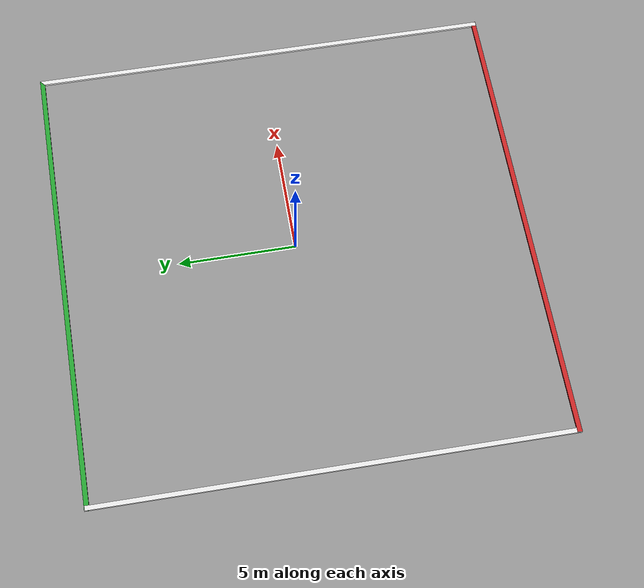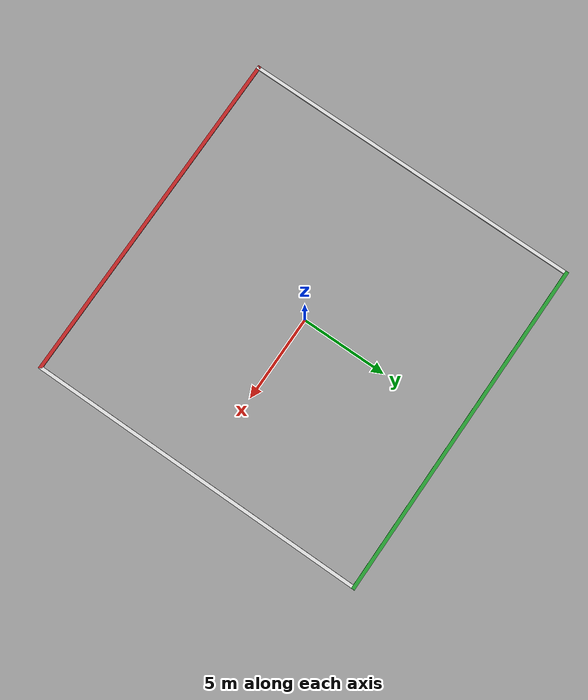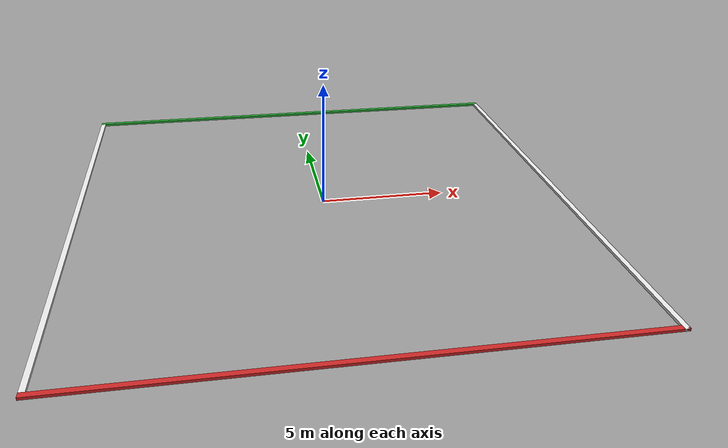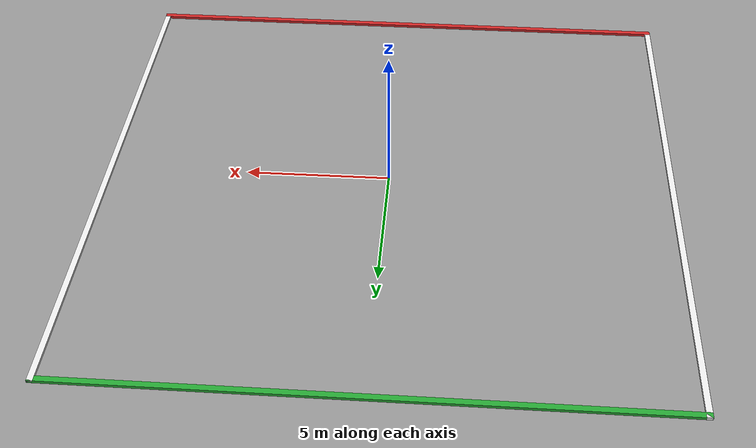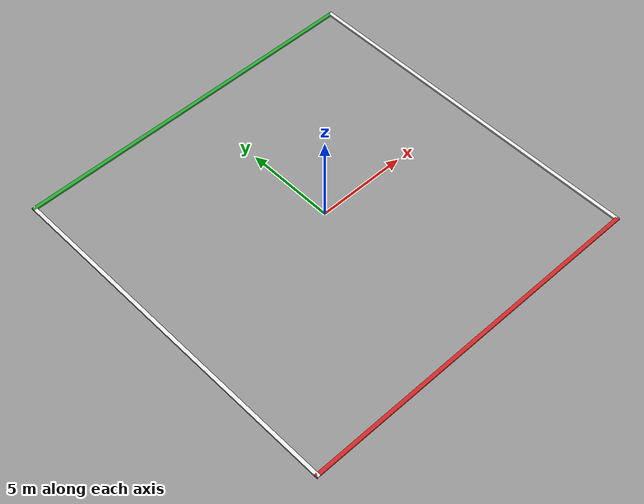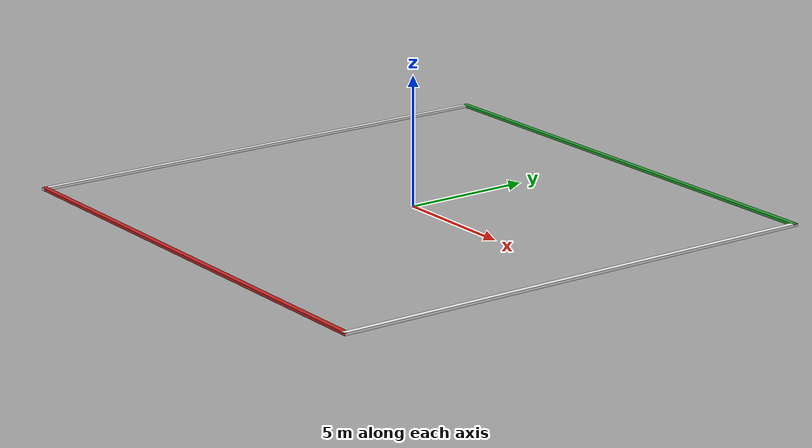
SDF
<sdf version="1.4">
 <world name="default">
  <scene><ambient>0.5 0.5 0.5 1</ambient><background>0.5 0.5 0.5 1</background><shadows>false</shadows></scene>
  <light type="directional" name="directional_light_1">
   <pose>0 20 20 0.1 0.1 0</pose>
   <diffuse>1 1 1 1</diffuse>
   <specular>1 1 1 1</specular>
   <attenuation><range>300</range></attenuation>
   <direction>0.1 0.1 -1</direction>
   <cast_shadows>false</cast_shadows>
  </light>
  <include><pose>0 9.9 0.001 0 0 0</pose><uri>model://green_line</uri></include>
  <include><pose>0 -9.9 0.001 0 0 0</pose><uri>model://red_line</uri></include>
  <include><pose>9.9 0 0.001 0 0 0</pose><uri>model://white_line</uri></include>
  <include><pose>-9.9 0 0.001 0 0 0</pose><uri>model://white_line</uri></include>
 </world>
</sdf>

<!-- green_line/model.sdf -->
<sdf version="1.5">
  <model name="green_line">
    <static>true</static>
    <link name="link">
      <collision name="collision">
        <geometry>
          <box>
            <size>20 0.2 .1</size>
          </box>
        </geometry>
      </collision>
      <visual name="visual">
        <cast_shadows>false</cast_shadows>
        <geometry>
          <box>
            <size>20 0.2 .1</size>
          </box>
        </geometry>
        <material>
          <script>
            <uri>model://green_line/materials/scripts</uri>
            <uri>model://green_line/materials/textures</uri>
            <name>vrc/green</name>
          </script>
        </material>
      </visual>
    </link>
  </model>
</sdf>

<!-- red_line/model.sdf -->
<sdf version="1.5">
  <model name="red_line">
    <static>true</static>
    <link name="link">
      <collision name="collision">
        <geometry>
          <box>
            <size>20 0.2 .1</size>
          </box>
        </geometry>
      </collision>
      <visual name="visual">
        <cast_shadows>false</cast_shadows>
        <geometry>
          <box>
            <size>20 0.2 .1</size>
          </box>
        </geometry>
        <material>
          <script>
            <uri>model://red_line/materials/scripts</uri>
            <uri>model://red_line/materials/textures</uri>
            <name>vrc/red</name>
          </script>
        </material>
      </visual>
    </link>
  </model>
</sdf>

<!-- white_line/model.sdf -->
<sdf version="1.5">
  <model name="red_line">
    <static>true</static>
    <link name="link">
      <collision name="collision">
        <geometry>
          <box>
            <size>0.2 20 .1</size>
          </box>
        </geometry>
      </collision>
      <visual name="visual">
        <cast_shadows>false</cast_shadows>
        <geometry>
          <box>
            <size>0.2 20 .1</size>
          </box>
        </geometry>
        <material>
          <script>
            <uri>model://white_line/materials/scripts</uri>
            <uri>model://white_line/materials/textures</uri>
            <name>vrc/white</name>
          </script>
        </material>
      </visual>
    </link>
  </model>
</sdf>
